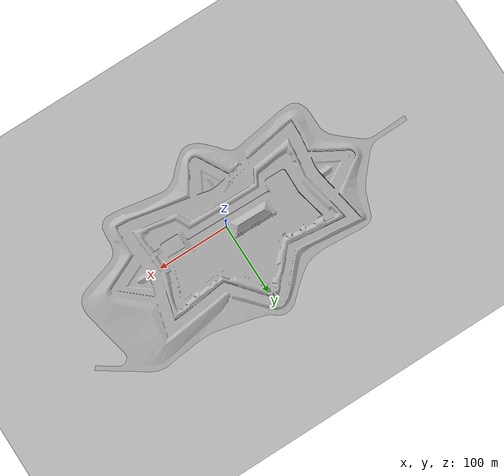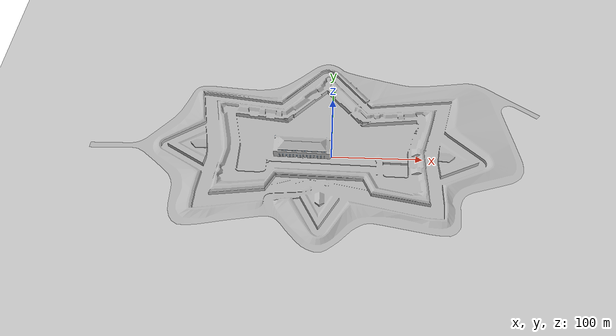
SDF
<sdf version="1.4">
 <world name="default">
  <light name="sundir" type="directional">
   <pose>0 0 10 0 -0 0</pose>
   <diffuse>1 0.95 0.8 1</diffuse>
   <specular>0.7 0.7 0.7 1</specular>
   <attenuation>
    <range>1000</range>
    <constant>0.9</constant>
    <linear>0.01</linear>
    <quadratic>0.001</quadratic>
   </attenuation>
   <direction>-0.3 0.4 -1</direction>
  </light>
  <light name="skydir1" type="directional">
   <cast_shadows>0</cast_shadows>
   <pose>10 0 10 0 -0 0</pose>
   <diffuse>0.5 0.5 0.52 1</diffuse>
   <specular>0.1 0.1 0.1 1</specular>
   <attenuation>
    <range>1000</range>
    <constant>0.9</constant>
    <linear>0.01</linear>
    <quadratic>0.001</quadratic>
   </attenuation>
   <direction>0.6 -0.4 -0.9</direction>
  </light>
  <light name="skydir2" type="directional">
   <cast_shadows>0</cast_shadows>
   <pose>20 0 10 0 -0 0</pose>
   <diffuse>0.5 0.5 0.52 1</diffuse>
   <specular>0.1 0.1 0.1 1</specular>
   <attenuation>
    <range>1000</range>
    <constant>0.9</constant>
    <linear>0.01</linear>
    <quadratic>0.001</quadratic>
   </attenuation>
   <direction>0 0.6 -0.9</direction>
  </light>
  <light name="refdir" type="directional">
   <cast_shadows>0</cast_shadows>
   <pose>30 0 10 0 -0 0</pose>
   <diffuse>0.52 0.5 0.5 1</diffuse>
   <specular>0.1 0.1 0.1 1</specular>
   <attenuation>
    <range>1000</range>
    <constant>0.9</constant>
    <linear>0.01</linear>
    <quadratic>0.001</quadratic>
   </attenuation>
   <direction>-0.6 -0.5 0.8</direction>
  </light>
  <model name="citadel">
   <pose>-291.751 -197.985 0 1.5708 -0 0</pose>
   <static>1</static>
   <link name="body">
    <collision name="collision">
     <geometry>
      <mesh>
       <uri>file:///home/rohan/work_workspace/src/Simulator/spiri_description/world/citadel_tex1.dae</uri>
      </mesh>
     </geometry>
    </collision>
    <visual name="visual">
     <geometry>
      <mesh>
       <uri>file:///home/rohan/work_workspace/src/Simulator/spiri_description/world/citadel_tex1.dae</uri>
      </mesh>
     </geometry>
    </visual>
    <velocity_decay><linear>0</linear><angular>0</angular></velocity_decay>
    <gravity>0</gravity>
   </link>
  </model>
  <scene><ambient>0.45 0.5 0.45 1</ambient><background>0 0.7 1 1</background><shadows>1</shadows></scene>
  <physics type="ode">
   <max_step_size>0.001</max_step_size>
   <real_time_factor>1</real_time_factor>
   <real_time_update_rate>1000</real_time_update_rate>
   <gravity>0 0 -9.8</gravity>
  </physics>
  <model name="ground_plane">
   <static>1</static>
   <link name="link">
    <collision name="collision">
     <geometry><plane><normal>0 0 1</normal><size>400 200</size></plane></geometry>
     <surface><friction><ode><mu>100</mu><mu2>50</mu2></ode></friction></surface>
    </collision>
    <visual name="visual">
     <cast_shadows>0</cast_shadows>
     <geometry><plane><normal>0 0 1</normal><size>400 200</size></plane></geometry>
     <material>
      <script>
       <uri>file:///home/rohan/work_workspace/src/Simulator/spiri_description/Media/materials/scripts/citadel_floor.material</uri>
       <name>spiri_description/citadel_floor</name>
      </script>
     </material>
    </visual>
    <velocity_decay><linear>0</linear><angular>0</angular></velocity_decay>
   </link>
   <pose>1 12 0 0 -0 0</pose>
  </model>
 </world>
</sdf>
